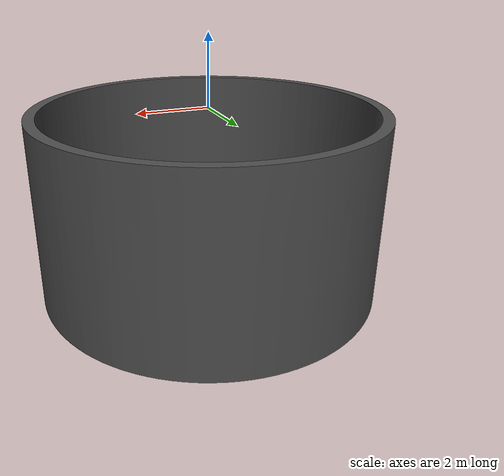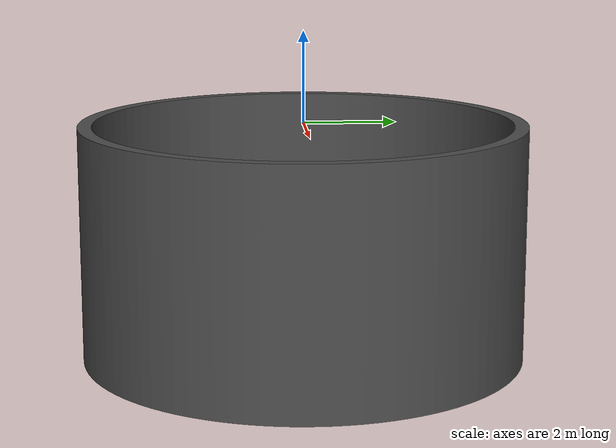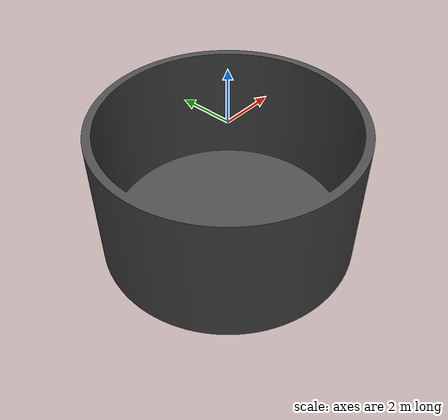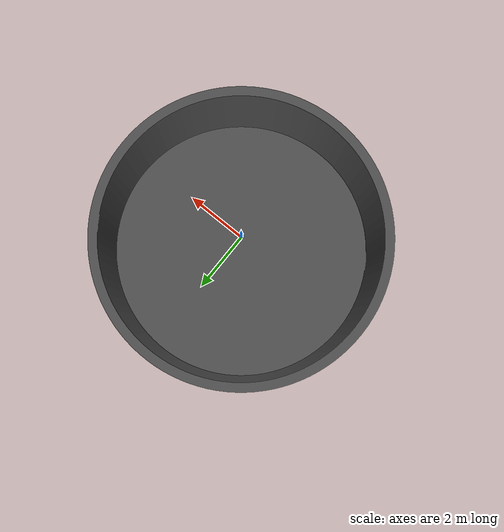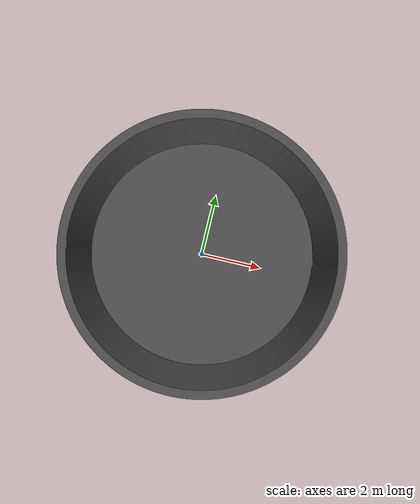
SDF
<?xml version="1.0" ?>
<sdf version="1.5">
  <world name="default">
    <gui>
      <camera name="user_camera">
        <!-- for surface starts -->

        <!-- for submerged starts -->
        <pose>0.0 -8.0 6.0 0 0.76 1.5708</pose>
      </camera>
    </gui>

    <scene>
      <ambient> 0.35 0.35 0.35 1.0</ambient>
      <shadows>1</shadows>
    </scene>

    <!-- Guessed from google maps; need real survey data -->
    <spherical_coordinates>
      <latitude_deg>41.5347</latitude_deg>
      <longitude_deg>-70.6442</longitude_deg>
    </spherical_coordinates>

    <light type="directional" name="sun1">
      <pose>50 0 150 0 0 0</pose>
      <diffuse>1 1 1 1</diffuse>
      <specular>.1 .1 .1 1</specular>
      <direction>0.3 0.3 -1</direction>
      <cast_shadows>true</cast_shadows>
    </light>

    <model name="tank">
      <static>true</static>
      <pose>0 0 0 0 0 0</pose>
      <self_collide>false</self_collide>
      <link name="tank_link">
        <visual name="tank_visual">
            <geometry>
              <mesh>
                <uri>file://resources/salt_water_test_facility_asbuilt_20190905_fixed.stl</uri>
                <scale>1.0 1.0 1.0</scale>
              </mesh>
            </geometry>
          <material>
            <script>
              <uri>file://media/materials/scripts/gazebo.material</uri>
              <name>Gazebo/DarkGrey</name>
            </script>
          </material>
        </visual>
        <collision name="collision">
          <geometry>
            <mesh>
                <uri>file://resources/salt_water_test_facility_asbuilt_20190905_fixed.stl</uri>
                <scale>1.0 1.0 1.0</scale>
            </mesh>
          </geometry>
          <surface>
            <contact>
              <collide_bitmask>0xffff</collide_bitmask>
            </contact>
          </surface>
        </collision>
      </link>
    </model>
  </world>
</sdf>
